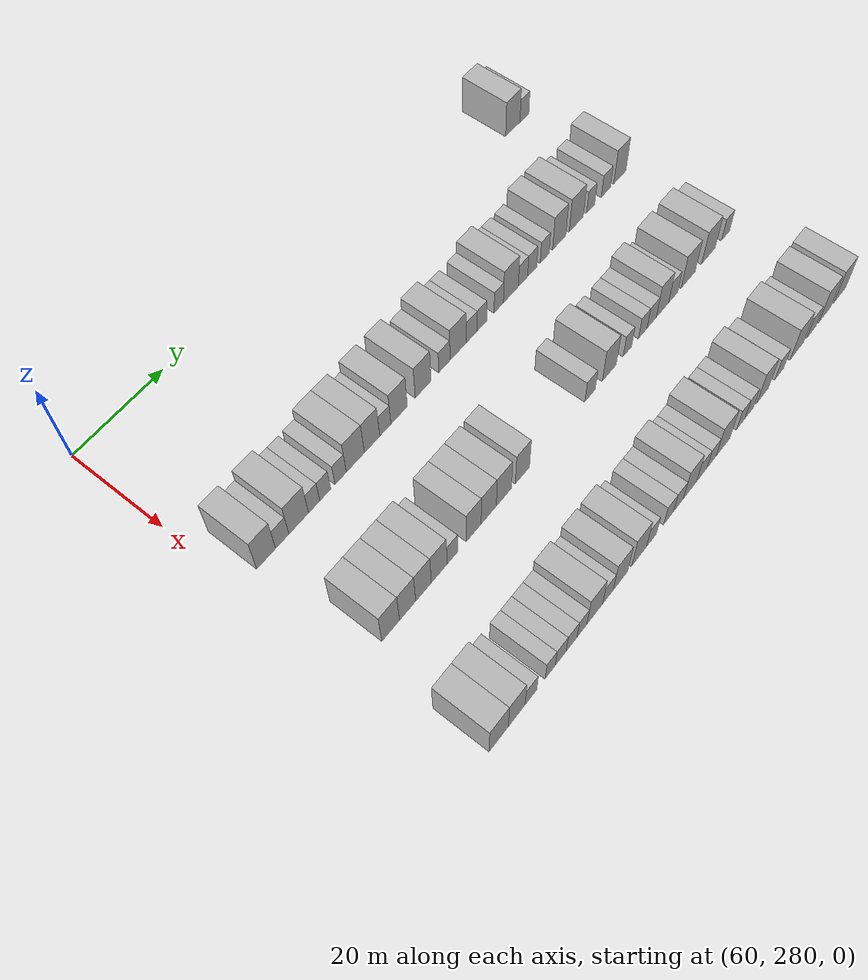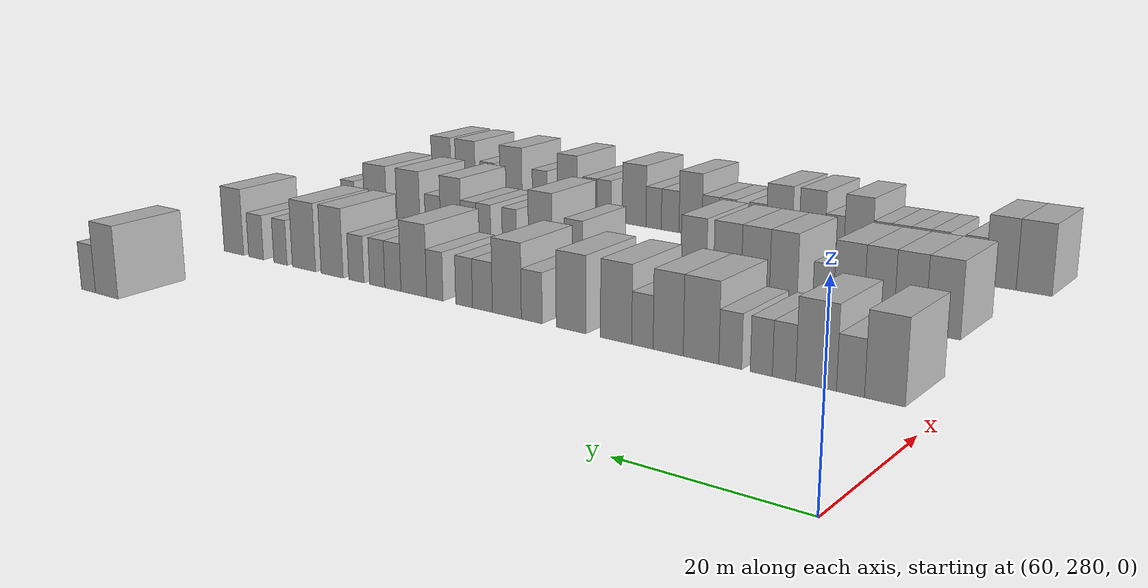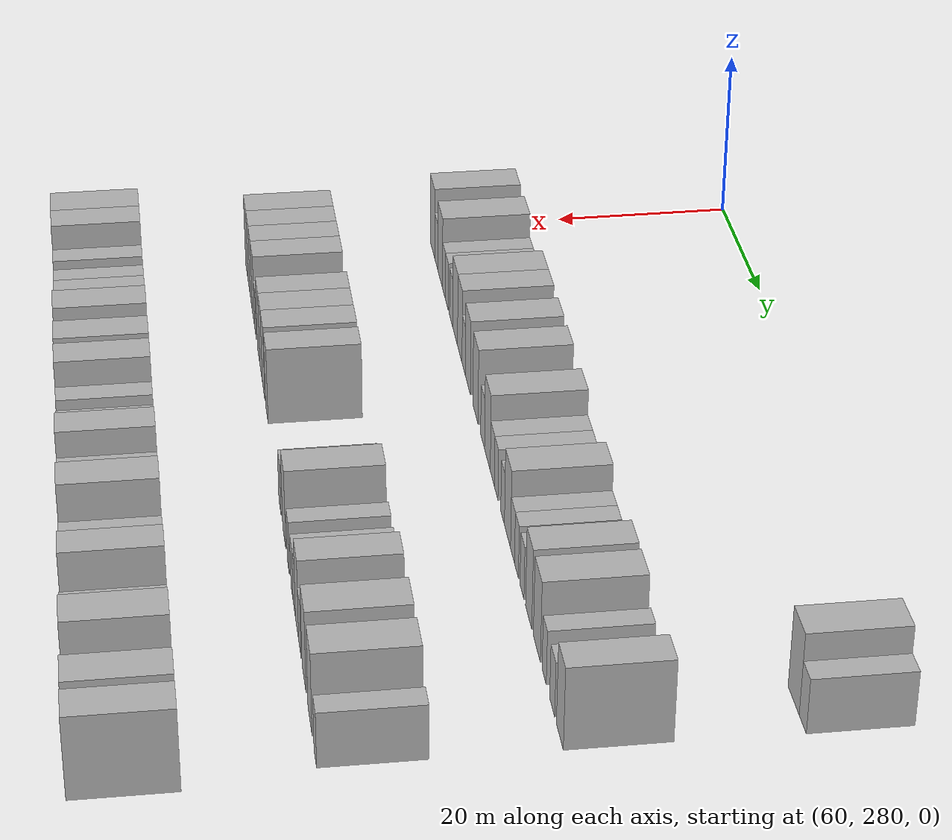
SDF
<sdf version="1.6">
 <world name="default">
  <model name="building_579">
   <static>1</static>
   <pose>69.0000 376.5312 0 0.000000 0.000000 0.000000</pose>
   <link name="link">
    <pose>0 0 4.50 0 0 0</pose>
    <collision name="collision"><geometry><box><size>10.0000 4.3672 9.0000</size></box></geometry></collision>
    <visual name="visual">
     <cast_shadows>0</cast_shadows>
     <geometry><box><size>10.0000 4.3672 9.0000</size></box></geometry>
     <material>
      <script>
       <uri>model://HANNAS_wall/materials/scripts</uri>
       <uri>model://HANNAS_wall/materials/textures</uri>
       <name>vrc/HANNAS_wall</name>
      </script>
     </material>
    </visual>
   </link>
  </model>
  <model name="building_580">
   <static>1</static>
   <pose>69.0000 380.0950 0 0.000000 0.000000 0.000000</pose>
   <link name="link">
    <pose>0 0 3.00 0 0 0</pose>
    <collision name="collision"><geometry><box><size>10.0000 2.7604 6.0000</size></box></geometry></collision>
    <visual name="visual">
     <cast_shadows>0</cast_shadows>
     <geometry><box><size>10.0000 2.7604 6.0000</size></box></geometry>
     <material>
      <script>
       <uri>model://HANNAS_wall/materials/scripts</uri>
       <uri>model://HANNAS_wall/materials/textures</uri>
       <name>vrc/HANNAS_wall</name>
      </script>
     </material>
    </visual>
   </link>
  </model>
  <model name="building_745">
   <static>1</static>
   <pose>91.0000 285.8031 0 0.000000 0.000000 0.000000</pose>
   <link name="link">
    <pose>0 0 4.50 0 0 0</pose>
    <collision name="collision"><geometry><box><size>10.0000 4.2060 9.0000</size></box></geometry></collision>
    <visual name="visual">
     <cast_shadows>0</cast_shadows>
     <geometry><box><size>10.0000 4.2060 9.0000</size></box></geometry>
     <material>
      <script>
       <uri>model://HANNAS_wall/materials/scripts</uri>
       <uri>model://HANNAS_wall/materials/textures</uri>
       <name>vrc/HANNAS_wall</name>
      </script>
     </material>
    </visual>
   </link>
  </model>
  <model name="building_746">
   <static>1</static>
   <pose>91.0000 289.3948 0 0.000000 0.000000 0.000000</pose>
   <link name="link">
    <pose>0 0 3.00 0 0 0</pose>
    <collision name="collision"><geometry><box><size>10.0000 2.9773 6.0000</size></box></geometry></collision>
    <visual name="visual">
     <cast_shadows>0</cast_shadows>
     <geometry><box><size>10.0000 2.9773 6.0000</size></box></geometry>
     <material>
      <script>
       <uri>model://HANNAS_wall/materials/scripts</uri>
       <uri>model://HANNAS_wall/materials/textures</uri>
       <name>vrc/HANNAS_wall</name>
      </script>
     </material>
    </visual>
   </link>
  </model>
  <model name="building_747">
   <static>1</static>
   <pose>91.0000 293.1178 0 0.000000 0.000000 0.000000</pose>
   <link name="link">
    <pose>0 0 4.50 0 0 0</pose>
    <collision name="collision"><geometry><box><size>10.0000 4.4688 9.0000</size></box></geometry></collision>
    <visual name="visual">
     <cast_shadows>0</cast_shadows>
     <geometry><box><size>10.0000 4.4688 9.0000</size></box></geometry>
     <material>
      <script>
       <uri>model://HANNAS_wall/materials/scripts</uri>
       <uri>model://HANNAS_wall/materials/textures</uri>
       <name>vrc/HANNAS_wall</name>
      </script>
     </material>
    </visual>
   </link>
  </model>
  <model name="building_748">
   <static>1</static>
   <pose>91.0000 296.6648 0 0.000000 0.000000 0.000000</pose>
   <link name="link">
    <pose>0 0 3.00 0 0 0</pose>
    <collision name="collision"><geometry><box><size>10.0000 2.6252 6.0000</size></box></geometry></collision>
    <visual name="visual">
     <cast_shadows>0</cast_shadows>
     <geometry><box><size>10.0000 2.6252 6.0000</size></box></geometry>
     <material>
      <script>
       <uri>model://HANNAS_wall/materials/scripts</uri>
       <uri>model://HANNAS_wall/materials/textures</uri>
       <name>vrc/HANNAS_wall</name>
      </script>
     </material>
    </visual>
   </link>
  </model>
  <model name="building_749">
   <static>1</static>
   <pose>91.0000 299.2484 0 0.000000 0.000000 0.000000</pose>
   <link name="link">
    <pose>0 0 3.00 0 0 0</pose>
    <collision name="collision"><geometry><box><size>10.0000 2.5419 6.0000</size></box></geometry></collision>
    <visual name="visual">
     <cast_shadows>0</cast_shadows>
     <geometry><box><size>10.0000 2.5419 6.0000</size></box></geometry>
     <material>
      <script>
       <uri>model://HANNAS_wall/materials/scripts</uri>
       <uri>model://HANNAS_wall/materials/textures</uri>
       <name>vrc/HANNAS_wall</name>
      </script>
     </material>
    </visual>
   </link>
  </model>
  <model name="building_750">
   <static>1</static>
   <pose>91.0000 302.8671 0 0.000000 0.000000 0.000000</pose>
   <link name="link">
    <pose>0 0 3.00 0 0 0</pose>
    <collision name="collision"><geometry><box><size>10.0000 2.6953 6.0000</size></box></geometry></collision>
    <visual name="visual">
     <cast_shadows>0</cast_shadows>
     <geometry><box><size>10.0000 2.6953 6.0000</size></box></geometry>
     <material>
      <script>
       <uri>model://HANNAS_wall/materials/scripts</uri>
       <uri>model://HANNAS_wall/materials/textures</uri>
       <name>vrc/HANNAS_wall</name>
      </script>
     </material>
    </visual>
   </link>
  </model>
  <model name="building_751">
   <static>1</static>
   <pose>91.0000 306.3829 0 0.000000 0.000000 0.000000</pose>
   <link name="link">
    <pose>0 0 4.50 0 0 0</pose>
    <collision name="collision"><geometry><box><size>10.0000 4.3364 9.0000</size></box></geometry></collision>
    <visual name="visual">
     <cast_shadows>0</cast_shadows>
     <geometry><box><size>10.0000 4.3364 9.0000</size></box></geometry>
     <material>
      <script>
       <uri>model://HANNAS_wall/materials/scripts</uri>
       <uri>model://HANNAS_wall/materials/textures</uri>
       <name>vrc/HANNAS_wall</name>
      </script>
     </material>
    </visual>
   </link>
  </model>
  <model name="building_752">
   <static>1</static>
   <pose>91.0000 310.4400 0 0.000000 0.000000 0.000000</pose>
   <link name="link">
    <pose>0 0 4.50 0 0 0</pose>
    <collision name="collision"><geometry><box><size>10.0000 3.7779 9.0000</size></box></geometry></collision>
    <visual name="visual">
     <cast_shadows>0</cast_shadows>
     <geometry><box><size>10.0000 3.7779 9.0000</size></box></geometry>
     <material>
      <script>
       <uri>model://HANNAS_wall/materials/scripts</uri>
       <uri>model://HANNAS_wall/materials/textures</uri>
       <name>vrc/HANNAS_wall</name>
      </script>
     </material>
    </visual>
   </link>
  </model>
  <model name="building_753">
   <static>1</static>
   <pose>91.0000 313.6992 0 0.000000 0.000000 0.000000</pose>
   <link name="link">
    <pose>0 0 3.00 0 0 0</pose>
    <collision name="collision"><geometry><box><size>10.0000 2.7405 6.0000</size></box></geometry></collision>
    <visual name="visual">
     <cast_shadows>0</cast_shadows>
     <geometry><box><size>10.0000 2.7405 6.0000</size></box></geometry>
     <material>
      <script>
       <uri>model://HANNAS_wall/materials/scripts</uri>
       <uri>model://HANNAS_wall/materials/textures</uri>
       <name>vrc/HANNAS_wall</name>
      </script>
     </material>
    </visual>
   </link>
  </model>
  <model name="building_754">
   <static>1</static>
   <pose>91.0000 317.1320 0 0.000000 0.000000 0.000000</pose>
   <link name="link">
    <pose>0 0 4.50 0 0 0</pose>
    <collision name="collision"><geometry><box><size>10.0000 4.1251 9.0000</size></box></geometry></collision>
    <visual name="visual">
     <cast_shadows>0</cast_shadows>
     <geometry><box><size>10.0000 4.1251 9.0000</size></box></geometry>
     <material>
      <script>
       <uri>model://HANNAS_wall/materials/scripts</uri>
       <uri>model://HANNAS_wall/materials/textures</uri>
       <name>vrc/HANNAS_wall</name>
      </script>
     </material>
    </visual>
   </link>
  </model>
  <model name="building_755">
   <static>1</static>
   <pose>91.0000 323.2321 0 0.000000 0.000000 0.000000</pose>
   <link name="link">
    <pose>0 0 4.50 0 0 0</pose>
    <collision name="collision"><geometry><box><size>10.0000 4.0751 9.0000</size></box></geometry></collision>
    <visual name="visual">
     <cast_shadows>0</cast_shadows>
     <geometry><box><size>10.0000 4.0751 9.0000</size></box></geometry>
     <material>
      <script>
       <uri>model://HANNAS_wall/materials/scripts</uri>
       <uri>model://HANNAS_wall/materials/textures</uri>
       <name>vrc/HANNAS_wall</name>
      </script>
     </material>
    </visual>
   </link>
  </model>
  <model name="building_756">
   <static>1</static>
   <pose>91.0000 328.7572 0 0.000000 0.000000 0.000000</pose>
   <link name="link">
    <pose>0 0 3.00 0 0 0</pose>
    <collision name="collision"><geometry><box><size>10.0000 2.9752 6.0000</size></box></geometry></collision>
    <visual name="visual">
     <cast_shadows>0</cast_shadows>
     <geometry><box><size>10.0000 2.9752 6.0000</size></box></geometry>
     <material>
      <script>
       <uri>model://HANNAS_wall/materials/scripts</uri>
       <uri>model://HANNAS_wall/materials/textures</uri>
       <name>vrc/HANNAS_wall</name>
      </script>
     </material>
    </visual>
   </link>
  </model>
  <model name="building_757">
   <static>1</static>
   <pose>91.0000 332.3833 0 0.000000 0.000000 0.000000</pose>
   <link name="link">
    <pose>0 0 4.50 0 0 0</pose>
    <collision name="collision"><geometry><box><size>10.0000 4.2769 9.0000</size></box></geometry></collision>
    <visual name="visual">
     <cast_shadows>0</cast_shadows>
     <geometry><box><size>10.0000 4.2769 9.0000</size></box></geometry>
     <material>
      <script>
       <uri>model://HANNAS_wall/materials/scripts</uri>
       <uri>model://HANNAS_wall/materials/textures</uri>
       <name>vrc/HANNAS_wall</name>
      </script>
     </material>
    </visual>
   </link>
  </model>
  <model name="building_758">
   <static>1</static>
   <pose>91.0000 336.0195 0 0.000000 0.000000 0.000000</pose>
   <link name="link">
    <pose>0 0 3.00 0 0 0</pose>
    <collision name="collision"><geometry><box><size>10.0000 2.9954 6.0000</size></box></geometry></collision>
    <visual name="visual">
     <cast_shadows>0</cast_shadows>
     <geometry><box><size>10.0000 2.9954 6.0000</size></box></geometry>
     <material>
      <script>
       <uri>model://HANNAS_wall/materials/scripts</uri>
       <uri>model://HANNAS_wall/materials/textures</uri>
       <name>vrc/HANNAS_wall</name>
      </script>
     </material>
    </visual>
   </link>
  </model>
  <model name="building_759">
   <static>1</static>
   <pose>91.0000 338.8084 0 0.000000 0.000000 0.000000</pose>
   <link name="link">
    <pose>0 0 3.00 0 0 0</pose>
    <collision name="collision"><geometry><box><size>10.0000 2.5824 6.0000</size></box></geometry></collision>
    <visual name="visual">
     <cast_shadows>0</cast_shadows>
     <geometry><box><size>10.0000 2.5824 6.0000</size></box></geometry>
     <material>
      <script>
       <uri>model://HANNAS_wall/materials/scripts</uri>
       <uri>model://HANNAS_wall/materials/textures</uri>
       <name>vrc/HANNAS_wall</name>
      </script>
     </material>
    </visual>
   </link>
  </model>
  <model name="building_760">
   <static>1</static>
   <pose>91.0000 343.3972 0 0.000000 0.000000 0.000000</pose>
   <link name="link">
    <pose>0 0 3.00 0 0 0</pose>
    <collision name="collision"><geometry><box><size>10.0000 2.5953 6.0000</size></box></geometry></collision>
    <visual name="visual">
     <cast_shadows>0</cast_shadows>
     <geometry><box><size>10.0000 2.5953 6.0000</size></box></geometry>
     <material>
      <script>
       <uri>model://HANNAS_wall/materials/scripts</uri>
       <uri>model://HANNAS_wall/materials/textures</uri>
       <name>vrc/HANNAS_wall</name>
      </script>
     </material>
    </visual>
   </link>
  </model>
  <model name="building_761">
   <static>1</static>
   <pose>91.0000 346.7845 0 0.000000 0.000000 0.000000</pose>
   <link name="link">
    <pose>0 0 4.50 0 0 0</pose>
    <collision name="collision"><geometry><box><size>10.0000 4.1791 9.0000</size></box></geometry></collision>
    <visual name="visual">
     <cast_shadows>0</cast_shadows>
     <geometry><box><size>10.0000 4.1791 9.0000</size></box></geometry>
     <material>
      <script>
       <uri>model://HANNAS_wall/materials/scripts</uri>
       <uri>model://HANNAS_wall/materials/textures</uri>
       <name>vrc/HANNAS_wall</name>
      </script>
     </material>
    </visual>
   </link>
  </model>
  <model name="building_762">
   <static>1</static>
   <pose>91.0000 350.2107 0 0.000000 0.000000 0.000000</pose>
   <link name="link">
    <pose>0 0 3.00 0 0 0</pose>
    <collision name="collision"><geometry><box><size>10.0000 2.6734 6.0000</size></box></geometry></collision>
    <visual name="visual">
     <cast_shadows>0</cast_shadows>
     <geometry><box><size>10.0000 2.6734 6.0000</size></box></geometry>
     <material>
      <script>
       <uri>model://HANNAS_wall/materials/scripts</uri>
       <uri>model://HANNAS_wall/materials/textures</uri>
       <name>vrc/HANNAS_wall</name>
      </script>
     </material>
    </visual>
   </link>
  </model>
  <model name="building_763">
   <static>1</static>
   <pose>91.0000 352.8367 0 0.000000 0.000000 0.000000</pose>
   <link name="link">
    <pose>0 0 3.00 0 0 0</pose>
    <collision name="collision"><geometry><box><size>10.0000 2.5786 6.0000</size></box></geometry></collision>
    <visual name="visual">
     <cast_shadows>0</cast_shadows>
     <geometry><box><size>10.0000 2.5786 6.0000</size></box></geometry>
     <material>
      <script>
       <uri>model://HANNAS_wall/materials/scripts</uri>
       <uri>model://HANNAS_wall/materials/textures</uri>
       <name>vrc/HANNAS_wall</name>
      </script>
     </material>
    </visual>
   </link>
  </model>
  <model name="building_764">
   <static>1</static>
   <pose>91.0000 356.4318 0 0.000000 0.000000 0.000000</pose>
   <link name="link">
    <pose>0 0 3.00 0 0 0</pose>
    <collision name="collision"><geometry><box><size>10.0000 2.6117 6.0000</size></box></geometry></collision>
    <visual name="visual">
     <cast_shadows>0</cast_shadows>
     <geometry><box><size>10.0000 2.6117 6.0000</size></box></geometry>
     <material>
      <script>
       <uri>model://HANNAS_wall/materials/scripts</uri>
       <uri>model://HANNAS_wall/materials/textures</uri>
       <name>vrc/HANNAS_wall</name>
      </script>
     </material>
    </visual>
   </link>
  </model>
  <model name="building_765">
   <static>1</static>
   <pose>91.0000 360.6956 0 0.000000 0.000000 0.000000</pose>
   <link name="link">
    <pose>0 0 4.50 0 0 0</pose>
    <collision name="collision"><geometry><box><size>10.0000 3.9159 9.0000</size></box></geometry></collision>
    <visual name="visual">
     <cast_shadows>0</cast_shadows>
     <geometry><box><size>10.0000 3.9159 9.0000</size></box></geometry>
     <material>
      <script>
       <uri>model://HANNAS_wall/materials/scripts</uri>
       <uri>model://HANNAS_wall/materials/textures</uri>
       <name>vrc/HANNAS_wall</name>
      </script>
     </material>
    </visual>
   </link>
  </model>
  <model name="building_766">
   <static>1</static>
   <pose>91.0000 365.7885 0 0.000000 0.000000 0.000000</pose>
   <link name="link">
    <pose>0 0 4.50 0 0 0</pose>
    <collision name="collision"><geometry><box><size>10.0000 4.2700 9.0000</size></box></geometry></collision>
    <visual name="visual">
     <cast_shadows>0</cast_shadows>
     <geometry><box><size>10.0000 4.2700 9.0000</size></box></geometry>
     <material>
      <script>
       <uri>model://HANNAS_wall/materials/scripts</uri>
       <uri>model://HANNAS_wall/materials/textures</uri>
       <name>vrc/HANNAS_wall</name>
      </script>
     </material>
    </visual>
   </link>
  </model>
  <model name="building_767">
   <static>1</static>
   <pose>91.0000 370.1709 0 0.000000 0.000000 0.000000</pose>
   <link name="link">
    <pose>0 0 3.00 0 0 0</pose>
    <collision name="collision"><geometry><box><size>10.0000 2.4947 6.0000</size></box></geometry></collision>
    <visual name="visual">
     <cast_shadows>0</cast_shadows>
     <geometry><box><size>10.0000 2.4947 6.0000</size></box></geometry>
     <material>
      <script>
       <uri>model://HANNAS_wall/materials/scripts</uri>
       <uri>model://HANNAS_wall/materials/textures</uri>
       <name>vrc/HANNAS_wall</name>
      </script>
     </material>
    </visual>
   </link>
  </model>
  <model name="building_768">
   <static>1</static>
   <pose>91.0000 374.8563 0 0.000000 0.000000 0.000000</pose>
   <link name="link">
    <pose>0 0 3.00 0 0 0</pose>
    <collision name="collision"><geometry><box><size>10.0000 2.8761 6.0000</size></box></geometry></collision>
    <visual name="visual">
     <cast_shadows>0</cast_shadows>
     <geometry><box><size>10.0000 2.8761 6.0000</size></box></geometry>
     <material>
      <script>
       <uri>model://HANNAS_wall/materials/scripts</uri>
       <uri>model://HANNAS_wall/materials/textures</uri>
       <name>vrc/HANNAS_wall</name>
      </script>
     </material>
    </visual>
   </link>
  </model>
  <model name="building_769">
   <static>1</static>
   <pose>91.0000 379.2310 0 0.000000 0.000000 0.000000</pose>
   <link name="link">
    <pose>0 0 4.50 0 0 0</pose>
    <collision name="collision"><geometry><box><size>10.0000 3.8732 9.0000</size></box></geometry></collision>
    <visual name="visual">
     <cast_shadows>0</cast_shadows>
     <geometry><box><size>10.0000 3.8732 9.0000</size></box></geometry>
     <material>
      <script>
       <uri>model://HANNAS_wall/materials/scripts</uri>
       <uri>model://HANNAS_wall/materials/textures</uri>
       <name>vrc/HANNAS_wall</name>
      </script>
     </material>
    </visual>
   </link>
  </model>
  <model name="building_936">
   <static>1</static>
   <pose>113.0000 288.6057 0 0.000000 0.000000 0.000000</pose>
   <link name="link">
    <pose>0 0 4.50 0 0 0</pose>
    <collision name="collision"><geometry><box><size>10.0000 4.0424 9.0000</size></box></geometry></collision>
    <visual name="visual">
     <cast_shadows>0</cast_shadows>
     <geometry><box><size>10.0000 4.0424 9.0000</size></box></geometry>
     <material>
      <script>
       <uri>model://HANNAS_wall/materials/scripts</uri>
       <uri>model://HANNAS_wall/materials/textures</uri>
       <name>vrc/HANNAS_wall</name>
      </script>
     </material>
    </visual>
   </link>
  </model>
  <model name="building_937">
   <static>1</static>
   <pose>113.0000 292.4985 0 0.000000 0.000000 0.000000</pose>
   <link name="link">
    <pose>0 0 4.50 0 0 0</pose>
    <collision name="collision"><geometry><box><size>10.0000 3.7432 9.0000</size></box></geometry></collision>
    <visual name="visual">
     <cast_shadows>0</cast_shadows>
     <geometry><box><size>10.0000 3.7432 9.0000</size></box></geometry>
     <material>
      <script>
       <uri>model://HANNAS_wall/materials/scripts</uri>
       <uri>model://HANNAS_wall/materials/textures</uri>
       <name>vrc/HANNAS_wall</name>
      </script>
     </material>
    </visual>
   </link>
  </model>
  <model name="building_938">
   <static>1</static>
   <pose>113.0000 296.1950 0 0.000000 0.000000 0.000000</pose>
   <link name="link">
    <pose>0 0 4.50 0 0 0</pose>
    <collision name="collision"><geometry><box><size>10.0000 3.6500 9.0000</size></box></geometry></collision>
    <visual name="visual">
     <cast_shadows>0</cast_shadows>
     <geometry><box><size>10.0000 3.6500 9.0000</size></box></geometry>
     <material>
      <script>
       <uri>model://HANNAS_wall/materials/scripts</uri>
       <uri>model://HANNAS_wall/materials/textures</uri>
       <name>vrc/HANNAS_wall</name>
      </script>
     </material>
    </visual>
   </link>
  </model>
  <model name="building_939">
   <static>1</static>
   <pose>113.0000 299.9218 0 0.000000 0.000000 0.000000</pose>
   <link name="link">
    <pose>0 0 4.50 0 0 0</pose>
    <collision name="collision"><geometry><box><size>10.0000 3.8036 9.0000</size></box></geometry></collision>
    <visual name="visual">
     <cast_shadows>0</cast_shadows>
     <geometry><box><size>10.0000 3.8036 9.0000</size></box></geometry>
     <material>
      <script>
       <uri>model://HANNAS_wall/materials/scripts</uri>
       <uri>model://HANNAS_wall/materials/textures</uri>
       <name>vrc/HANNAS_wall</name>
      </script>
     </material>
    </visual>
   </link>
  </model>
  <model name="building_940">
   <static>1</static>
   <pose>113.0000 303.1407 0 0.000000 0.000000 0.000000</pose>
   <link name="link">
    <pose>0 0 3.00 0 0 0</pose>
    <collision name="collision"><geometry><box><size>10.0000 2.6343 6.0000</size></box></geometry></collision>
    <visual name="visual">
     <cast_shadows>0</cast_shadows>
     <geometry><box><size>10.0000 2.6343 6.0000</size></box></geometry>
     <material>
      <script>
       <uri>model://HANNAS_wall/materials/scripts</uri>
       <uri>model://HANNAS_wall/materials/textures</uri>
       <name>vrc/HANNAS_wall</name>
      </script>
     </material>
    </visual>
   </link>
  </model>
  <model name="building_941">
   <static>1</static>
   <pose>113.0000 308.2894 0 0.000000 0.000000 0.000000</pose>
   <link name="link">
    <pose>0 0 4.50 0 0 0</pose>
    <collision name="collision"><geometry><box><size>10.0000 3.6630 9.0000</size></box></geometry></collision>
    <visual name="visual">
     <cast_shadows>0</cast_shadows>
     <geometry><box><size>10.0000 3.6630 9.0000</size></box></geometry>
     <material>
      <script>
       <uri>model://HANNAS_wall/materials/scripts</uri>
       <uri>model://HANNAS_wall/materials/textures</uri>
       <name>vrc/HANNAS_wall</name>
      </script>
     </material>
    </visual>
   </link>
  </model>
  <model name="building_942">
   <static>1</static>
   <pose>113.0000 312.0294 0 0.000000 0.000000 0.000000</pose>
   <link name="link">
    <pose>0 0 4.50 0 0 0</pose>
    <collision name="collision"><geometry><box><size>10.0000 3.8170 9.0000</size></box></geometry></collision>
    <visual name="visual">
     <cast_shadows>0</cast_shadows>
     <geometry><box><size>10.0000 3.8170 9.0000</size></box></geometry>
     <material>
      <script>
       <uri>model://HANNAS_wall/materials/scripts</uri>
       <uri>model://HANNAS_wall/materials/textures</uri>
       <name>vrc/HANNAS_wall</name>
      </script>
     </material>
    </visual>
   </link>
  </model>
  <model name="building_943">
   <static>1</static>
   <pose>113.0000 315.8571 0 0.000000 0.000000 0.000000</pose>
   <link name="link">
    <pose>0 0 4.50 0 0 0</pose>
    <collision name="collision"><geometry><box><size>10.0000 3.8383 9.0000</size></box></geometry></collision>
    <visual name="visual">
     <cast_shadows>0</cast_shadows>
     <geometry><box><size>10.0000 3.8383 9.0000</size></box></geometry>
     <material>
      <script>
       <uri>model://HANNAS_wall/materials/scripts</uri>
       <uri>model://HANNAS_wall/materials/textures</uri>
       <name>vrc/HANNAS_wall</name>
      </script>
     </material>
    </visual>
   </link>
  </model>
  <model name="building_944">
   <static>1</static>
   <pose>113.0000 320.6178 0 0.000000 0.000000 0.000000</pose>
   <link name="link">
    <pose>0 0 4.50 0 0 0</pose>
    <collision name="collision"><geometry><box><size>10.0000 3.6830 9.0000</size></box></geometry></collision>
    <visual name="visual">
     <cast_shadows>0</cast_shadows>
     <geometry><box><size>10.0000 3.6830 9.0000</size></box></geometry>
     <material>
      <script>
       <uri>model://HANNAS_wall/materials/scripts</uri>
       <uri>model://HANNAS_wall/materials/textures</uri>
       <name>vrc/HANNAS_wall</name>
      </script>
     </material>
    </visual>
   </link>
  </model>
  <model name="building_945">
   <static>1</static>
   <pose>113.0000 338.8377 0 0.000000 0.000000 0.000000</pose>
   <link name="link">
    <pose>0 0 3.00 0 0 0</pose>
    <collision name="collision"><geometry><box><size>10.0000 2.9190 6.0000</size></box></geometry></collision>
    <visual name="visual">
     <cast_shadows>0</cast_shadows>
     <geometry><box><size>10.0000 2.9190 6.0000</size></box></geometry>
     <material>
      <script>
       <uri>model://HANNAS_wall/materials/scripts</uri>
       <uri>model://HANNAS_wall/materials/textures</uri>
       <name>vrc/HANNAS_wall</name>
      </script>
     </material>
    </visual>
   </link>
  </model>
  <model name="building_946">
   <static>1</static>
   <pose>113.0000 344.2729 0 0.000000 0.000000 0.000000</pose>
   <link name="link">
    <pose>0 0 4.50 0 0 0</pose>
    <collision name="collision"><geometry><box><size>10.0000 3.9513 9.0000</size></box></geometry></collision>
    <visual name="visual">
     <cast_shadows>0</cast_shadows>
     <geometry><box><size>10.0000 3.9513 9.0000</size></box></geometry>
     <material>
      <script>
       <uri>model://HANNAS_wall/materials/scripts</uri>
       <uri>model://HANNAS_wall/materials/textures</uri>
       <name>vrc/HANNAS_wall</name>
      </script>
     </material>
    </visual>
   </link>
  </model>
  <model name="building_947">
   <static>1</static>
   <pose>113.0000 349.4833 0 0.000000 0.000000 0.000000</pose>
   <link name="link">
    <pose>0 0 3.00 0 0 0</pose>
    <collision name="collision"><geometry><box><size>10.0000 2.4695 6.0000</size></box></geometry></collision>
    <visual name="visual">
     <cast_shadows>0</cast_shadows>
     <geometry><box><size>10.0000 2.4695 6.0000</size></box></geometry>
     <material>
      <script>
       <uri>model://HANNAS_wall/materials/scripts</uri>
       <uri>model://HANNAS_wall/materials/textures</uri>
       <name>vrc/HANNAS_wall</name>
      </script>
     </material>
    </visual>
   </link>
  </model>
  <model name="building_948">
   <static>1</static>
   <pose>113.0000 354.0090 0 0.000000 0.000000 0.000000</pose>
   <link name="link">
    <pose>0 0 3.00 0 0 0</pose>
    <collision name="collision"><geometry><box><size>10.0000 2.5819 6.0000</size></box></geometry></collision>
    <visual name="visual">
     <cast_shadows>0</cast_shadows>
     <geometry><box><size>10.0000 2.5819 6.0000</size></box></geometry>
     <material>
      <script>
       <uri>model://HANNAS_wall/materials/scripts</uri>
       <uri>model://HANNAS_wall/materials/textures</uri>
       <name>vrc/HANNAS_wall</name>
      </script>
     </material>
    </visual>
   </link>
  </model>
  <model name="building_949">
   <static>1</static>
   <pose>113.0000 356.6646 0 0.000000 0.000000 0.000000</pose>
   <link name="link">
    <pose>0 0 3.00 0 0 0</pose>
    <collision name="collision"><geometry><box><size>10.0000 2.7292 6.0000</size></box></geometry></collision>
    <visual name="visual">
     <cast_shadows>0</cast_shadows>
     <geometry><box><size>10.0000 2.7292 6.0000</size></box></geometry>
     <material>
      <script>
       <uri>model://HANNAS_wall/materials/scripts</uri>
       <uri>model://HANNAS_wall/materials/textures</uri>
       <name>vrc/HANNAS_wall</name>
      </script>
     </material>
    </visual>
   </link>
  </model>
  <model name="building_950">
   <static>1</static>
   <pose>113.0000 359.8928 0 0.000000 0.000000 0.000000</pose>
   <link name="link">
    <pose>0 0 4.50 0 0 0</pose>
    <collision name="collision"><geometry><box><size>10.0000 3.7272 9.0000</size></box></geometry></collision>
    <visual name="visual">
     <cast_shadows>0</cast_shadows>
     <geometry><box><size>10.0000 3.7272 9.0000</size></box></geometry>
     <material>
      <script>
       <uri>model://HANNAS_wall/materials/scripts</uri>
       <uri>model://HANNAS_wall/materials/textures</uri>
       <name>vrc/HANNAS_wall</name>
      </script>
     </material>
    </visual>
   </link>
  </model>
  <model name="building_951">
   <static>1</static>
   <pose>113.0000 363.1755 0 0.000000 0.000000 0.000000</pose>
   <link name="link">
    <pose>0 0 3.00 0 0 0</pose>
    <collision name="collision"><geometry><box><size>10.0000 2.8382 6.0000</size></box></geometry></collision>
    <visual name="visual">
     <cast_shadows>0</cast_shadows>
     <geometry><box><size>10.0000 2.8382 6.0000</size></box></geometry>
     <material>
      <script>
       <uri>model://HANNAS_wall/materials/scripts</uri>
       <uri>model://HANNAS_wall/materials/textures</uri>
       <name>vrc/HANNAS_wall</name>
      </script>
     </material>
    </visual>
   </link>
  </model>
  <model name="building_952">
   <static>1</static>
   <pose>113.0000 367.7915 0 0.000000 0.000000 0.000000</pose>
   <link name="link">
    <pose>0 0 4.50 0 0 0</pose>
    <collision name="collision"><geometry><box><size>10.0000 4.3937 9.0000</size></box></geometry></collision>
    <visual name="visual">
     <cast_shadows>0</cast_shadows>
     <geometry><box><size>10.0000 4.3937 9.0000</size></box></geometry>
     <material>
      <script>
       <uri>model://HANNAS_wall/materials/scripts</uri>
       <uri>model://HANNAS_wall/materials/textures</uri>
       <name>vrc/HANNAS_wall</name>
      </script>
     </material>
    </visual>
   </link>
  </model>
  <model name="building_953">
   <static>1</static>
   <pose>113.0000 374.1806 0 0.000000 0.000000 0.000000</pose>
   <link name="link">
    <pose>0 0 4.50 0 0 0</pose>
    <collision name="collision"><geometry><box><size>10.0000 4.3845 9.0000</size></box></geometry></collision>
    <visual name="visual">
     <cast_shadows>0</cast_shadows>
     <geometry><box><size>10.0000 4.3845 9.0000</size></box></geometry>
     <material>
      <script>
       <uri>model://HANNAS_wall/materials/scripts</uri>
       <uri>model://HANNAS_wall/materials/textures</uri>
       <name>vrc/HANNAS_wall</name>
      </script>
     </material>
    </visual>
   </link>
  </model>
  <model name="building_954">
   <static>1</static>
   <pose>113.0000 379.6972 0 0.000000 0.000000 0.000000</pose>
   <link name="link">
    <pose>0 0 3.00 0 0 0</pose>
    <collision name="collision"><geometry><box><size>10.0000 2.6487 6.0000</size></box></geometry></collision>
    <visual name="visual">
     <cast_shadows>0</cast_shadows>
     <geometry><box><size>10.0000 2.6487 6.0000</size></box></geometry>
     <material>
      <script>
       <uri>model://HANNAS_wall/materials/scripts</uri>
       <uri>model://HANNAS_wall/materials/textures</uri>
       <name>vrc/HANNAS_wall</name>
      </script>
     </material>
    </visual>
   </link>
  </model>
  <model name="building_1128">
   <static>1</static>
   <pose>135.0000 285.6901 0 0.000000 0.000000 0.000000</pose>
   <link name="link">
    <pose>0 0 4.50 0 0 0</pose>
    <collision name="collision"><geometry><box><size>10.0000 4.3899 9.0000</size></box></geometry></collision>
    <visual name="visual">
     <cast_shadows>0</cast_shadows>
     <geometry><box><size>10.0000 4.3899 9.0000</size></box></geometry>
     <material>
      <script>
       <uri>model://HANNAS_wall/materials/scripts</uri>
       <uri>model://HANNAS_wall/materials/textures</uri>
       <name>vrc/HANNAS_wall</name>
      </script>
     </material>
    </visual>
   </link>
  </model>
  <model name="building_1129">
   <static>1</static>
   <pose>135.0000 289.8327 0 0.000000 0.000000 0.000000</pose>
   <link name="link">
    <pose>0 0 4.50 0 0 0</pose>
    <collision name="collision"><geometry><box><size>10.0000 3.8952 9.0000</size></box></geometry></collision>
    <visual name="visual">
     <cast_shadows>0</cast_shadows>
     <geometry><box><size>10.0000 3.8952 9.0000</size></box></geometry>
     <material>
      <script>
       <uri>model://HANNAS_wall/materials/scripts</uri>
       <uri>model://HANNAS_wall/materials/textures</uri>
       <name>vrc/HANNAS_wall</name>
      </script>
     </material>
    </visual>
   </link>
  </model>
  <model name="building_1130">
   <static>1</static>
   <pose>135.0000 293.1903 0 0.000000 0.000000 0.000000</pose>
   <link name="link">
    <pose>0 0 3.00 0 0 0</pose>
    <collision name="collision"><geometry><box><size>10.0000 2.8199 6.0000</size></box></geometry></collision>
    <visual name="visual">
     <cast_shadows>0</cast_shadows>
     <geometry><box><size>10.0000 2.8199 6.0000</size></box></geometry>
     <material>
      <script>
       <uri>model://HANNAS_wall/materials/scripts</uri>
       <uri>model://HANNAS_wall/materials/textures</uri>
       <name>vrc/HANNAS_wall</name>
      </script>
     </material>
    </visual>
   </link>
  </model>
  <model name="building_1131">
   <static>1</static>
   <pose>135.0000 297.8274 0 0.000000 0.000000 0.000000</pose>
   <link name="link">
    <pose>0 0 3.00 0 0 0</pose>
    <collision name="collision"><geometry><box><size>10.0000 2.4543 6.0000</size></box></geometry></collision>
    <visual name="visual">
     <cast_shadows>0</cast_shadows>
     <geometry><box><size>10.0000 2.4543 6.0000</size></box></geometry>
     <material>
      <script>
       <uri>model://HANNAS_wall/materials/scripts</uri>
       <uri>model://HANNAS_wall/materials/textures</uri>
       <name>vrc/HANNAS_wall</name>
      </script>
     </material>
    </visual>
   </link>
  </model>
  <model name="building_1132">
   <static>1</static>
   <pose>135.0000 300.3825 0 0.000000 0.000000 0.000000</pose>
   <link name="link">
    <pose>0 0 3.00 0 0 0</pose>
    <collision name="collision"><geometry><box><size>10.0000 2.6560 6.0000</size></box></geometry></collision>
    <visual name="visual">
     <cast_shadows>0</cast_shadows>
     <geometry><box><size>10.0000 2.6560 6.0000</size></box></geometry>
     <material>
      <script>
       <uri>model://HANNAS_wall/materials/scripts</uri>
       <uri>model://HANNAS_wall/materials/textures</uri>
       <name>vrc/HANNAS_wall</name>
      </script>
     </material>
    </visual>
   </link>
  </model>
  <model name="building_1133">
   <static>1</static>
   <pose>135.0000 303.0646 0 0.000000 0.000000 0.000000</pose>
   <link name="link">
    <pose>0 0 3.00 0 0 0</pose>
    <collision name="collision"><geometry><box><size>10.0000 2.7083 6.0000</size></box></geometry></collision>
    <visual name="visual">
     <cast_shadows>0</cast_shadows>
     <geometry><box><size>10.0000 2.7083 6.0000</size></box></geometry>
     <material>
      <script>
       <uri>model://HANNAS_wall/materials/scripts</uri>
       <uri>model://HANNAS_wall/materials/textures</uri>
       <name>vrc/HANNAS_wall</name>
      </script>
     </material>
    </visual>
   </link>
  </model>
  <model name="building_1134">
   <static>1</static>
   <pose>135.0000 305.6482 0 0.000000 0.000000 0.000000</pose>
   <link name="link">
    <pose>0 0 3.00 0 0 0</pose>
    <collision name="collision"><geometry><box><size>10.0000 2.4587 6.0000</size></box></geometry></collision>
    <visual name="visual">
     <cast_shadows>0</cast_shadows>
     <geometry><box><size>10.0000 2.4587 6.0000</size></box></geometry>
     <material>
      <script>
       <uri>model://HANNAS_wall/materials/scripts</uri>
       <uri>model://HANNAS_wall/materials/textures</uri>
       <name>vrc/HANNAS_wall</name>
      </script>
     </material>
    </visual>
   </link>
  </model>
  <model name="building_1135">
   <static>1</static>
   <pose>135.0000 308.8797 0 0.000000 0.000000 0.000000</pose>
   <link name="link">
    <pose>0 0 4.50 0 0 0</pose>
    <collision name="collision"><geometry><box><size>10.0000 4.0044 9.0000</size></box></geometry></collision>
    <visual name="visual">
     <cast_shadows>0</cast_shadows>
     <geometry><box><size>10.0000 4.0044 9.0000</size></box></geometry>
     <material>
      <script>
       <uri>model://HANNAS_wall/materials/scripts</uri>
       <uri>model://HANNAS_wall/materials/textures</uri>
       <name>vrc/HANNAS_wall</name>
      </script>
     </material>
    </visual>
   </link>
  </model>
  <model name="building_1136">
   <static>1</static>
   <pose>135.0000 312.2495 0 0.000000 0.000000 0.000000</pose>
   <link name="link">
    <pose>0 0 3.00 0 0 0</pose>
    <collision name="collision"><geometry><box><size>10.0000 2.7352 6.0000</size></box></geometry></collision>
    <visual name="visual">
     <cast_shadows>0</cast_shadows>
     <geometry><box><size>10.0000 2.7352 6.0000</size></box></geometry>
     <material>
      <script>
       <uri>model://HANNAS_wall/materials/scripts</uri>
       <uri>model://HANNAS_wall/materials/textures</uri>
       <name>vrc/HANNAS_wall</name>
      </script>
     </material>
    </visual>
   </link>
  </model>
  <model name="building_1137">
   <static>1</static>
   <pose>135.0000 315.5390 0 0.000000 0.000000 0.000000</pose>
   <link name="link">
    <pose>0 0 4.50 0 0 0</pose>
    <collision name="collision"><geometry><box><size>10.0000 3.8436 9.0000</size></box></geometry></collision>
    <visual name="visual">
     <cast_shadows>0</cast_shadows>
     <geometry><box><size>10.0000 3.8436 9.0000</size></box></geometry>
     <material>
      <script>
       <uri>model://HANNAS_wall/materials/scripts</uri>
       <uri>model://HANNAS_wall/materials/textures</uri>
       <name>vrc/HANNAS_wall</name>
      </script>
     </material>
    </visual>
   </link>
  </model>
  <model name="building_1138">
   <static>1</static>
   <pose>135.0000 320.4299 0 0.000000 0.000000 0.000000</pose>
   <link name="link">
    <pose>0 0 4.50 0 0 0</pose>
    <collision name="collision"><geometry><box><size>10.0000 3.9383 9.0000</size></box></geometry></collision>
    <visual name="visual">
     <cast_shadows>0</cast_shadows>
     <geometry><box><size>10.0000 3.9383 9.0000</size></box></geometry>
     <material>
      <script>
       <uri>model://HANNAS_wall/materials/scripts</uri>
       <uri>model://HANNAS_wall/materials/textures</uri>
       <name>vrc/HANNAS_wall</name>
      </script>
     </material>
    </visual>
   </link>
  </model>
  <model name="building_1139">
   <static>1</static>
   <pose>135.0000 323.7578 0 0.000000 0.000000 0.000000</pose>
   <link name="link">
    <pose>0 0 3.00 0 0 0</pose>
    <collision name="collision"><geometry><box><size>10.0000 2.7175 6.0000</size></box></geometry></collision>
    <visual name="visual">
     <cast_shadows>0</cast_shadows>
     <geometry><box><size>10.0000 2.7175 6.0000</size></box></geometry>
     <material>
      <script>
       <uri>model://HANNAS_wall/materials/scripts</uri>
       <uri>model://HANNAS_wall/materials/textures</uri>
       <name>vrc/HANNAS_wall</name>
      </script>
     </material>
    </visual>
   </link>
  </model>
  <model name="building_1140">
   <static>1</static>
   <pose>135.0000 328.4741 0 0.000000 0.000000 0.000000</pose>
   <link name="link">
    <pose>0 0 3.00 0 0 0</pose>
    <collision name="collision"><geometry><box><size>10.0000 2.7152 6.0000</size></box></geometry></collision>
    <visual name="visual">
     <cast_shadows>0</cast_shadows>
     <geometry><box><size>10.0000 2.7152 6.0000</size></box></geometry>
     <material>
      <script>
       <uri>model://HANNAS_wall/materials/scripts</uri>
       <uri>model://HANNAS_wall/materials/textures</uri>
       <name>vrc/HANNAS_wall</name>
      </script>
     </material>
    </visual>
   </link>
  </model>
  <model name="building_1141">
   <static>1</static>
   <pose>135.0000 331.1689 0 0.000000 0.000000 0.000000</pose>
   <link name="link">
    <pose>0 0 3.00 0 0 0</pose>
    <collision name="collision"><geometry><box><size>10.0000 2.6743 6.0000</size></box></geometry></collision>
    <visual name="visual">
     <cast_shadows>0</cast_shadows>
     <geometry><box><size>10.0000 2.6743 6.0000</size></box></geometry>
     <material>
      <script>
       <uri>model://HANNAS_wall/materials/scripts</uri>
       <uri>model://HANNAS_wall/materials/textures</uri>
       <name>vrc/HANNAS_wall</name>
      </script>
     </material>
    </visual>
   </link>
  </model>
  <model name="building_1142">
   <static>1</static>
   <pose>135.0000 334.3957 0 0.000000 0.000000 0.000000</pose>
   <link name="link">
    <pose>0 0 4.50 0 0 0</pose>
    <collision name="collision"><geometry><box><size>10.0000 3.7793 9.0000</size></box></geometry></collision>
    <visual name="visual">
     <cast_shadows>0</cast_shadows>
     <geometry><box><size>10.0000 3.7793 9.0000</size></box></geometry>
     <material>
      <script>
       <uri>model://HANNAS_wall/materials/scripts</uri>
       <uri>model://HANNAS_wall/materials/textures</uri>
       <name>vrc/HANNAS_wall</name>
      </script>
     </material>
    </visual>
   </link>
  </model>
  <model name="building_1143">
   <static>1</static>
   <pose>135.0000 337.7716 0 0.000000 0.000000 0.000000</pose>
   <link name="link">
    <pose>0 0 3.00 0 0 0</pose>
    <collision name="collision"><geometry><box><size>10.0000 2.9726 6.0000</size></box></geometry></collision>
    <visual name="visual">
     <cast_shadows>0</cast_shadows>
     <geometry><box><size>10.0000 2.9726 6.0000</size></box></geometry>
     <material>
      <script>
       <uri>model://HANNAS_wall/materials/scripts</uri>
       <uri>model://HANNAS_wall/materials/textures</uri>
       <name>vrc/HANNAS_wall</name>
      </script>
     </material>
    </visual>
   </link>
  </model>
  <model name="building_1144">
   <static>1</static>
   <pose>135.0000 340.5565 0 0.000000 0.000000 0.000000</pose>
   <link name="link">
    <pose>0 0 3.00 0 0 0</pose>
    <collision name="collision"><geometry><box><size>10.0000 2.5971 6.0000</size></box></geometry></collision>
    <visual name="visual">
     <cast_shadows>0</cast_shadows>
     <geometry><box><size>10.0000 2.5971 6.0000</size></box></geometry>
     <material>
      <script>
       <uri>model://HANNAS_wall/materials/scripts</uri>
       <uri>model://HANNAS_wall/materials/textures</uri>
       <name>vrc/HANNAS_wall</name>
      </script>
     </material>
    </visual>
   </link>
  </model>
  <model name="building_1145">
   <static>1</static>
   <pose>135.0000 343.9198 0 0.000000 0.000000 0.000000</pose>
   <link name="link">
    <pose>0 0 4.50 0 0 0</pose>
    <collision name="collision"><geometry><box><size>10.0000 4.1297 9.0000</size></box></geometry></collision>
    <visual name="visual">
     <cast_shadows>0</cast_shadows>
     <geometry><box><size>10.0000 4.1297 9.0000</size></box></geometry>
     <material>
      <script>
       <uri>model://HANNAS_wall/materials/scripts</uri>
       <uri>model://HANNAS_wall/materials/textures</uri>
       <name>vrc/HANNAS_wall</name>
      </script>
     </material>
    </visual>
   </link>
  </model>
  <model name="building_1146">
   <static>1</static>
   <pose>135.0000 349.2352 0 0.000000 0.000000 0.000000</pose>
   <link name="link">
    <pose>0 0 3.00 0 0 0</pose>
    <collision name="collision"><geometry><box><size>10.0000 2.5011 6.0000</size></box></geometry></collision>
    <visual name="visual">
     <cast_shadows>0</cast_shadows>
     <geometry><box><size>10.0000 2.5011 6.0000</size></box></geometry>
     <material>
      <script>
       <uri>model://HANNAS_wall/materials/scripts</uri>
       <uri>model://HANNAS_wall/materials/textures</uri>
       <name>vrc/HANNAS_wall</name>
      </script>
     </material>
    </visual>
   </link>
  </model>
  <model name="building_1147">
   <static>1</static>
   <pose>135.0000 351.7786 0 0.000000 0.000000 0.000000</pose>
   <link name="link">
    <pose>0 0 3.00 0 0 0</pose>
    <collision name="collision"><geometry><box><size>10.0000 2.5856 6.0000</size></box></geometry></collision>
    <visual name="visual">
     <cast_shadows>0</cast_shadows>
     <geometry><box><size>10.0000 2.5856 6.0000</size></box></geometry>
     <material>
      <script>
       <uri>model://HANNAS_wall/materials/scripts</uri>
       <uri>model://HANNAS_wall/materials/textures</uri>
       <name>vrc/HANNAS_wall</name>
      </script>
     </material>
    </visual>
   </link>
  </model>
  <model name="building_1148">
   <static>1</static>
   <pose>135.0000 355.9152 0 0.000000 0.000000 0.000000</pose>
   <link name="link">
    <pose>0 0 4.50 0 0 0</pose>
    <collision name="collision"><geometry><box><size>10.0000 3.6878 9.0000</size></box></geometry></collision>
    <visual name="visual">
     <cast_shadows>0</cast_shadows>
     <geometry><box><size>10.0000 3.6878 9.0000</size></box></geometry>
     <material>
      <script>
       <uri>model://HANNAS_wall/materials/scripts</uri>
       <uri>model://HANNAS_wall/materials/textures</uri>
       <name>vrc/HANNAS_wall</name>
      </script>
     </material>
    </visual>
   </link>
  </model>
  <model name="building_1149">
   <static>1</static>
   <pose>135.0000 361.1425 0 0.000000 0.000000 0.000000</pose>
   <link name="link">
    <pose>0 0 3.00 0 0 0</pose>
    <collision name="collision"><geometry><box><size>10.0000 2.7668 6.0000</size></box></geometry></collision>
    <visual name="visual">
     <cast_shadows>0</cast_shadows>
     <geometry><box><size>10.0000 2.7668 6.0000</size></box></geometry>
     <material>
      <script>
       <uri>model://HANNAS_wall/materials/scripts</uri>
       <uri>model://HANNAS_wall/materials/textures</uri>
       <name>vrc/HANNAS_wall</name>
      </script>
     </material>
    </visual>
   </link>
  </model>
  <model name="building_1150">
   <static>1</static>
   <pose>135.0000 366.6944 0 0.000000 0.000000 0.000000</pose>
   <link name="link">
    <pose>0 0 4.50 0 0 0</pose>
    <collision name="collision"><geometry><box><size>10.0000 4.3369 9.0000</size></box></geometry></collision>
    <visual name="visual">
     <cast_shadows>0</cast_shadows>
     <geometry><box><size>10.0000 4.3369 9.0000</size></box></geometry>
     <material>
      <script>
       <uri>model://HANNAS_wall/materials/scripts</uri>
       <uri>model://HANNAS_wall/materials/textures</uri>
       <name>vrc/HANNAS_wall</name>
      </script>
     </material>
    </visual>
   </link>
  </model>
  <model name="building_1151">
   <static>1</static>
   <pose>135.0000 371.3528 0 0.000000 0.000000 0.000000</pose>
   <link name="link">
    <pose>0 0 3.00 0 0 0</pose>
    <collision name="collision"><geometry><box><size>10.0000 2.9800 6.0000</size></box></geometry></collision>
    <visual name="visual">
     <cast_shadows>0</cast_shadows>
     <geometry><box><size>10.0000 2.9800 6.0000</size></box></geometry>
     <material>
      <script>
       <uri>model://HANNAS_wall/materials/scripts</uri>
       <uri>model://HANNAS_wall/materials/textures</uri>
       <name>vrc/HANNAS_wall</name>
      </script>
     </material>
    </visual>
   </link>
  </model>
  <model name="building_1152">
   <static>1</static>
   <pose>135.0000 375.8498 0 0.000000 0.000000 0.000000</pose>
   <link name="link">
    <pose>0 0 4.50 0 0 0</pose>
    <collision name="collision"><geometry><box><size>10.0000 4.0139 9.0000</size></box></geometry></collision>
    <visual name="visual">
     <cast_shadows>0</cast_shadows>
     <geometry><box><size>10.0000 4.0139 9.0000</size></box></geometry>
     <material>
      <script>
       <uri>model://HANNAS_wall/materials/scripts</uri>
       <uri>model://HANNAS_wall/materials/textures</uri>
       <name>vrc/HANNAS_wall</name>
      </script>
     </material>
    </visual>
   </link>
  </model>
  <model name="building_1153">
   <static>1</static>
   <pose>135.0000 380.8753 0 0.000000 0.000000 0.000000</pose>
   <link name="link">
    <pose>0 0 4.50 0 0 0</pose>
    <collision name="collision"><geometry><box><size>10.0000 4.0373 9.0000</size></box></geometry></collision>
    <visual name="visual">
     <cast_shadows>0</cast_shadows>
     <geometry><box><size>10.0000 4.0373 9.0000</size></box></geometry>
     <material>
      <script>
       <uri>model://HANNAS_wall/materials/scripts</uri>
       <uri>model://HANNAS_wall/materials/textures</uri>
       <name>vrc/HANNAS_wall</name>
      </script>
     </material>
    </visual>
   </link>
  </model>
 </world>
</sdf>
